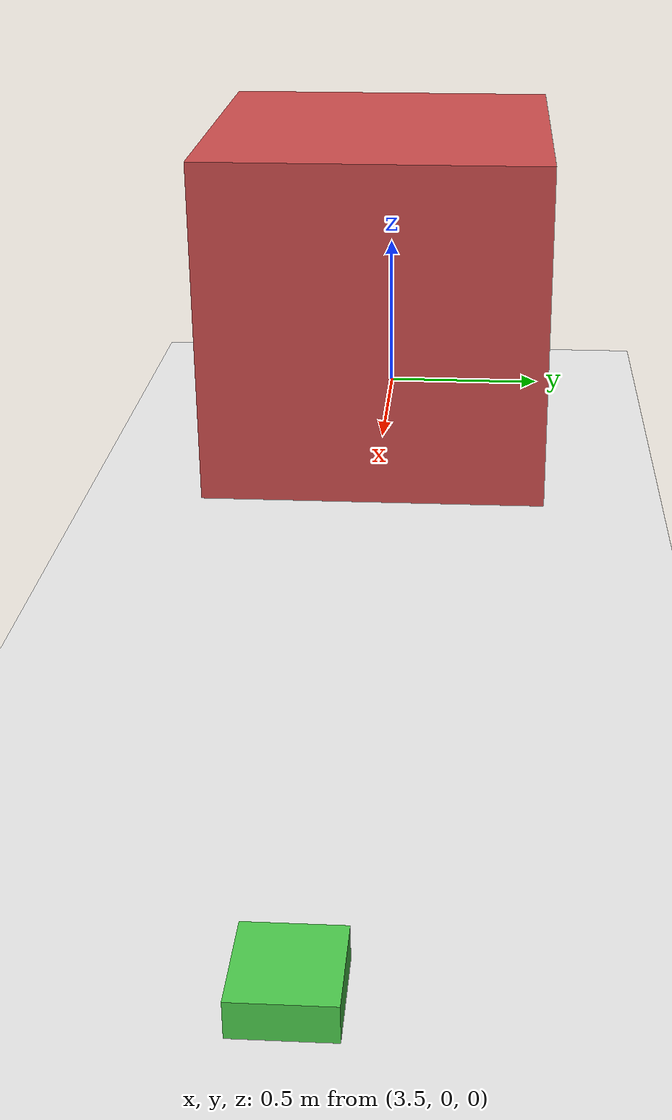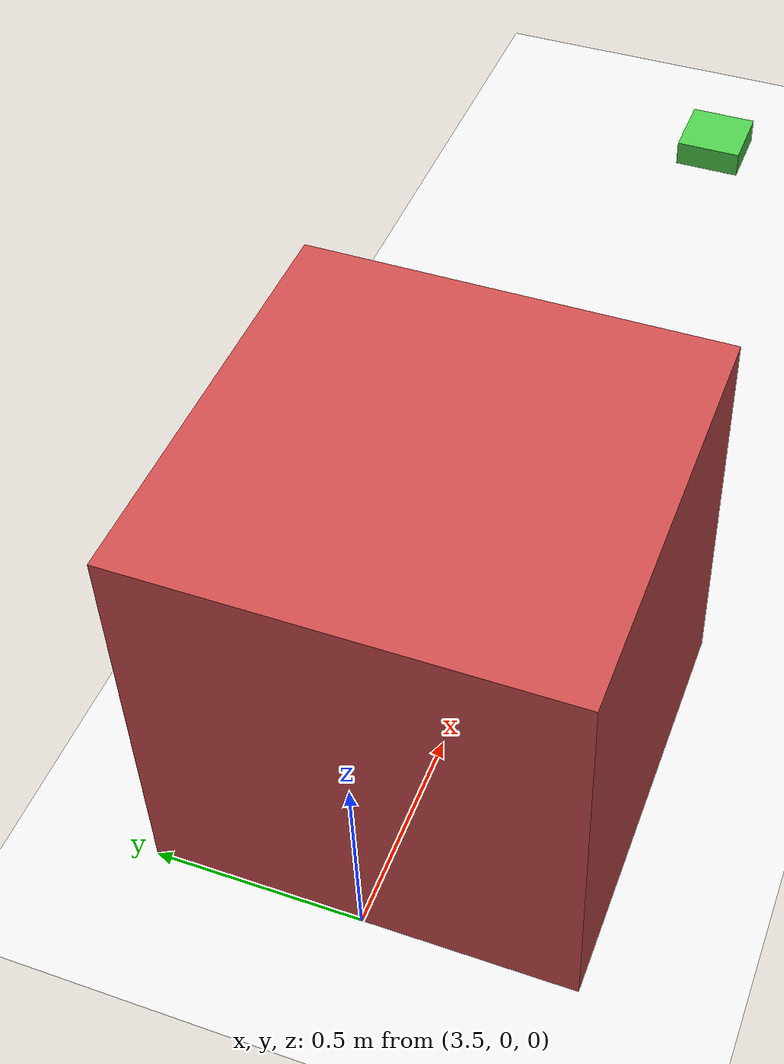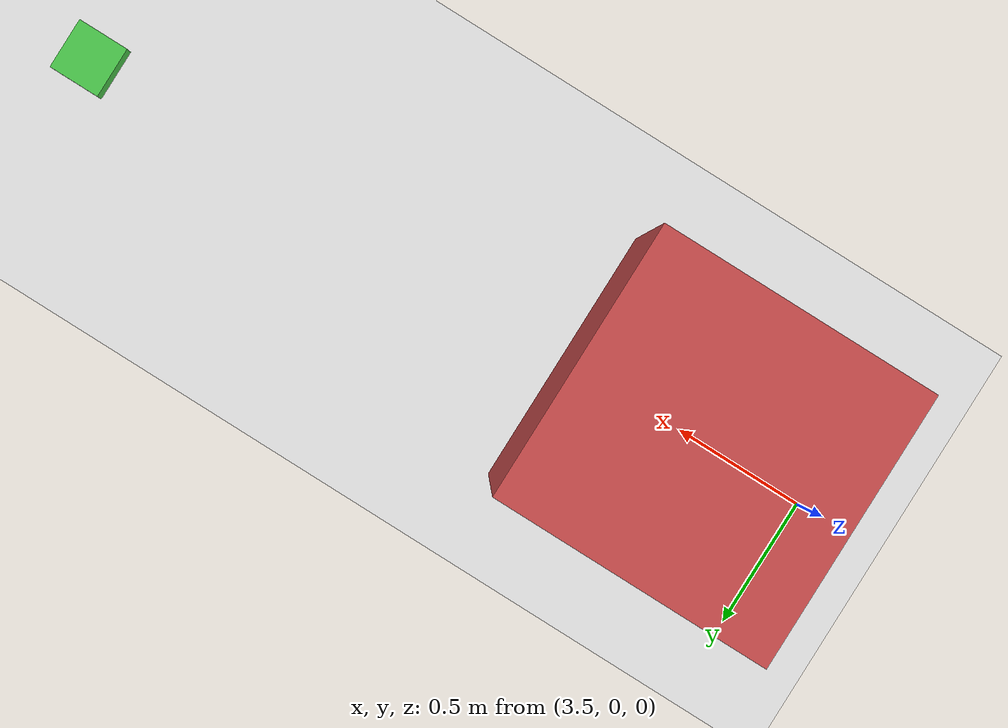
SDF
<sdf version="1.7">
 <world name="default">
  <light name="sun" type="directional">
   <cast_shadows>0</cast_shadows>
   <pose>0 0 10 0 -0 0</pose>
   <diffuse>0.8 0.8 0.8 1</diffuse>
   <specular>0.2 0.2 0.2 1</specular>
   <attenuation>
    <range>1000</range>
    <constant>0.9</constant>
    <linear>0.01</linear>
    <quadratic>0.001</quadratic>
   </attenuation>
   <direction>-0.5 0.1 -0.9</direction>
   <spot><inner_angle>0</inner_angle><outer_angle>0</outer_angle><falloff>0</falloff></spot>
  </light>
  <model name="ground_plane">
   <static>1</static>
   <link name="link">
    <collision name="collision">
     <geometry><plane><normal>0 0 1</normal><size>100 100</size></plane></geometry>
     <surface>
      <contact><collide_bitmask>65535</collide_bitmask></contact>
      <friction><ode><mu>100</mu><mu2>50</mu2></ode></friction>
     </surface>
    </collision>
    <visual name="visual">
     <cast_shadows>0</cast_shadows>
     <geometry><plane><normal>0 0 1</normal><size>100 100</size></plane></geometry>
     <material>
      <script><uri>file://media/materials/scripts/gazebo.material</uri><name>Gazebo/White</name></script>
     </material>
    </visual>
   </link>
  </model>
  <gravity>0 0 -9.8</gravity>
  <magnetic_field>6e-06 2.3e-05 -4.2e-05</magnetic_field>
  <atmosphere type="adiabatic"/>
  <physics type="ode">
   <max_step_size>0.001</max_step_size>
   <real_time_factor>1</real_time_factor>
   <real_time_update_rate>1000</real_time_update_rate>
  </physics>
  <scene><ambient>0.4 0.4 0.4 1</ambient><background>0.7 0.7 0.7 1</background><shadows>0</shadows></scene>
  <spherical_coordinates>
   <surface_model>EARTH_WGS84</surface_model>
   <latitude_deg>0</latitude_deg>
   <longitude_deg>0</longitude_deg>
   <elevation>0</elevation>
   <heading_deg>0</heading_deg>
  </spherical_coordinates>
  <model name="unit_box">
   <pose>4 0 0.5 0 -0 0</pose>
   <link name="link">
    <inertial>
     <mass>1</mass>
     <inertia>
      <ixx>0.166667</ixx>
      <ixy>0</ixy>
      <ixz>0</ixz>
      <iyy>0.166667</iyy>
      <iyz>0</iyz>
      <izz>0.166667</izz>
     </inertia>
    </inertial>
    <collision name="collision"><geometry><box><size>1 1 1</size></box></geometry></collision>
    <visual name="visual">
     <geometry><box><size>1 1 1</size></box></geometry>
     <material>
      <script><name>Gazebo/Grey</name><uri>file://media/materials/scripts/gazebo.material</uri></script>
      <shader type="pixel"><normal_map>__default__</normal_map></shader>
      <ambient>0.8 0.3 0.3 1</ambient>
      <diffuse>0.7 0.7 0.7 1</diffuse>
      <specular>0.01 0.01 0.01 1</specular>
      <emissive>0 0 0 1</emissive>
     </material>
    </visual>
   </link>
   <static>1</static>
  </model>
  <model name="unit_box_0">
   <link name="link">
    <inertial>
     <mass>1</mass>
     <inertia>
      <ixx>0.166667</ixx>
      <ixy>0</ixy>
      <ixz>0</ixz>
      <iyy>0.166667</iyy>
      <iyz>0</iyz>
      <izz>0.166667</izz>
     </inertia>
    </inertial>
    <visual name="visual">
     <geometry><box><size>0.2 0.2 0.1</size></box></geometry>
     <material>
      <script><name>Gazebo/Grey</name><uri>file://media/materials/scripts/gazebo.material</uri></script>
      <shader type="pixel"><normal_map>__default__</normal_map></shader>
      <ambient>0.3 0.8 0.3 1</ambient>
      <diffuse>0.7 0.7 0.7 1</diffuse>
      <specular>0.01 0.01 0.01 1</specular>
      <emissive>0 0 0 1</emissive>
     </material>
     <cast_shadows>0</cast_shadows>
    </visual>
   </link>
   <static>1</static>
   <pose>6.5 0 0.025 1e-05 -0 0</pose>
  </model>
 </world>
</sdf>
